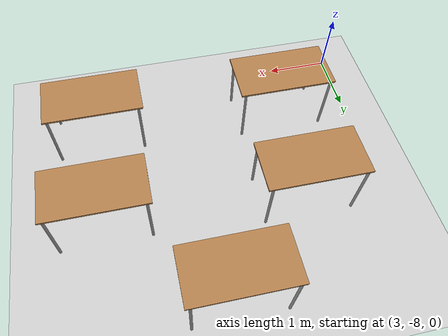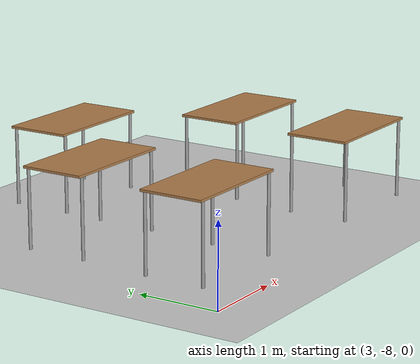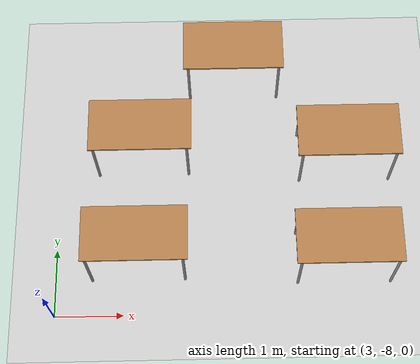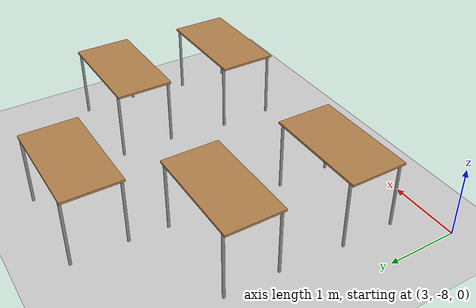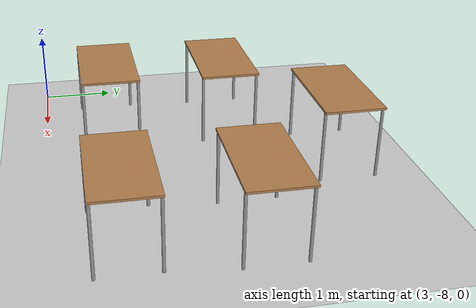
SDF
<sdf version="1.6">
 <world name="default">
  <model name="ground_plane">
   <static>1</static>
   <link name="link">
    <collision name="collision">
     <geometry><plane><normal>0 0 1</normal><size>100 100</size></plane></geometry>
     <surface><friction><ode><mu>100</mu><mu2>50</mu2></ode></friction></surface>
    </collision>
    <visual name="visual">
     <cast_shadows>0</cast_shadows>
     <geometry><plane><normal>0 0 1</normal><size>100 100</size></plane></geometry>
     <material>
      <script><uri>file://media/materials/scripts/gazebo.material</uri><name>Gazebo/Grey</name></script>
     </material>
    </visual>
   </link>
  </model>
  <model name="table_clone_3">
   <static>1</static>
   <link name="link">
    <collision name="surface">
     <pose>0 0 1 0 -0 0</pose>
     <geometry><box><size>1.5 0.8 0.03</size></box></geometry>
     <surface><friction><ode><mu>0.6</mu><mu2>0.6</mu2></ode></friction></surface>
    </collision>
    <visual name="visual1">
     <pose>0 0 1 0 -0 0</pose>
     <geometry><box><size>1.5 0.8 0.03</size></box></geometry>
     <material>
      <script><uri>file://media/materials/scripts/gazebo.material</uri><name>Gazebo/Wood</name></script>
     </material>
    </visual>
    <collision name="front_left_leg">
     <pose>0.68 0.38 0.5 0 -0 0</pose>
     <geometry><cylinder><radius>0.02</radius><length>1</length></cylinder></geometry>
    </collision>
    <visual name="front_left_leg">
     <pose>0.68 0.38 0.5 0 -0 0</pose>
     <geometry><cylinder><radius>0.02</radius><length>1</length></cylinder></geometry>
     <material>
      <script><uri>file://media/materials/scripts/gazebo.material</uri><name>Gazebo/Grey</name></script>
     </material>
    </visual>
    <collision name="front_right_leg">
     <pose>0.68 -0.38 0.5 0 -0 0</pose>
     <geometry><cylinder><radius>0.02</radius><length>1</length></cylinder></geometry>
    </collision>
    <visual name="front_right_leg">
     <pose>0.68 -0.38 0.5 0 -0 0</pose>
     <geometry><cylinder><radius>0.02</radius><length>1</length></cylinder></geometry>
     <material>
      <script><uri>file://media/materials/scripts/gazebo.material</uri><name>Gazebo/Grey</name></script>
     </material>
    </visual>
    <collision name="back_right_leg">
     <pose>-0.68 -0.38 0.5 0 -0 0</pose>
     <geometry><cylinder><radius>0.02</radius><length>1</length></cylinder></geometry>
    </collision>
    <visual name="back_right_leg">
     <pose>-0.68 -0.38 0.5 0 -0 0</pose>
     <geometry><cylinder><radius>0.02</radius><length>1</length></cylinder></geometry>
     <material>
      <script><uri>file://media/materials/scripts/gazebo.material</uri><name>Gazebo/Grey</name></script>
     </material>
    </visual>
    <collision name="back_left_leg">
     <pose>-0.68 0.38 0.5 0 -0 0</pose>
     <geometry><cylinder><radius>0.02</radius><length>1</length></cylinder></geometry>
    </collision>
    <visual name="back_left_leg">
     <pose>-0.68 0.38 0.5 0 -0 0</pose>
     <geometry><cylinder><radius>0.02</radius><length>1</length></cylinder></geometry>
     <material>
      <script><uri>file://media/materials/scripts/gazebo.material</uri><name>Gazebo/Grey</name></script>
     </material>
    </visual>
   </link>
   <pose>5.66427 -4.11783 0 0 -0 0</pose>
  </model>
  <model name="table_clone_4">
   <static>1</static>
   <link name="link">
    <collision name="surface">
     <pose>0 0 1 0 -0 0</pose>
     <geometry><box><size>1.5 0.8 0.03</size></box></geometry>
     <surface><friction><ode><mu>0.6</mu><mu2>0.6</mu2></ode></friction></surface>
    </collision>
    <visual name="visual1">
     <pose>0 0 1 0 -0 0</pose>
     <geometry><box><size>1.5 0.8 0.03</size></box></geometry>
     <material>
      <script><uri>file://media/materials/scripts/gazebo.material</uri><name>Gazebo/Wood</name></script>
     </material>
    </visual>
    <collision name="front_left_leg">
     <pose>0.68 0.38 0.5 0 -0 0</pose>
     <geometry><cylinder><radius>0.02</radius><length>1</length></cylinder></geometry>
    </collision>
    <visual name="front_left_leg">
     <pose>0.68 0.38 0.5 0 -0 0</pose>
     <geometry><cylinder><radius>0.02</radius><length>1</length></cylinder></geometry>
     <material>
      <script><uri>file://media/materials/scripts/gazebo.material</uri><name>Gazebo/Grey</name></script>
     </material>
    </visual>
    <collision name="front_right_leg">
     <pose>0.68 -0.38 0.5 0 -0 0</pose>
     <geometry><cylinder><radius>0.02</radius><length>1</length></cylinder></geometry>
    </collision>
    <visual name="front_right_leg">
     <pose>0.68 -0.38 0.5 0 -0 0</pose>
     <geometry><cylinder><radius>0.02</radius><length>1</length></cylinder></geometry>
     <material>
      <script><uri>file://media/materials/scripts/gazebo.material</uri><name>Gazebo/Grey</name></script>
     </material>
    </visual>
    <collision name="back_right_leg">
     <pose>-0.68 -0.38 0.5 0 -0 0</pose>
     <geometry><cylinder><radius>0.02</radius><length>1</length></cylinder></geometry>
    </collision>
    <visual name="back_right_leg">
     <pose>-0.68 -0.38 0.5 0 -0 0</pose>
     <geometry><cylinder><radius>0.02</radius><length>1</length></cylinder></geometry>
     <material>
      <script><uri>file://media/materials/scripts/gazebo.material</uri><name>Gazebo/Grey</name></script>
     </material>
    </visual>
    <collision name="back_left_leg">
     <pose>-0.68 0.38 0.5 0 -0 0</pose>
     <geometry><cylinder><radius>0.02</radius><length>1</length></cylinder></geometry>
    </collision>
    <visual name="back_left_leg">
     <pose>-0.68 0.38 0.5 0 -0 0</pose>
     <geometry><cylinder><radius>0.02</radius><length>1</length></cylinder></geometry>
     <material>
      <script><uri>file://media/materials/scripts/gazebo.material</uri><name>Gazebo/Grey</name></script>
     </material>
    </visual>
   </link>
   <pose>4.27531 -5.41503 0 0 -0 0</pose>
  </model>
  <model name="table_clone_5">
   <static>1</static>
   <link name="link">
    <collision name="surface">
     <pose>0 0 1 0 -0 0</pose>
     <geometry><box><size>1.5 0.8 0.03</size></box></geometry>
     <surface><friction><ode><mu>0.6</mu><mu2>0.6</mu2></ode></friction></surface>
    </collision>
    <visual name="visual1">
     <pose>0 0 1 0 -0 0</pose>
     <geometry><box><size>1.5 0.8 0.03</size></box></geometry>
     <material>
      <script><uri>file://media/materials/scripts/gazebo.material</uri><name>Gazebo/Wood</name></script>
     </material>
    </visual>
    <collision name="front_left_leg">
     <pose>0.68 0.38 0.5 0 -0 0</pose>
     <geometry><cylinder><radius>0.02</radius><length>1</length></cylinder></geometry>
    </collision>
    <visual name="front_left_leg">
     <pose>0.68 0.38 0.5 0 -0 0</pose>
     <geometry><cylinder><radius>0.02</radius><length>1</length></cylinder></geometry>
     <material>
      <script><uri>file://media/materials/scripts/gazebo.material</uri><name>Gazebo/Grey</name></script>
     </material>
    </visual>
    <collision name="front_right_leg">
     <pose>0.68 -0.38 0.5 0 -0 0</pose>
     <geometry><cylinder><radius>0.02</radius><length>1</length></cylinder></geometry>
    </collision>
    <visual name="front_right_leg">
     <pose>0.68 -0.38 0.5 0 -0 0</pose>
     <geometry><cylinder><radius>0.02</radius><length>1</length></cylinder></geometry>
     <material>
      <script><uri>file://media/materials/scripts/gazebo.material</uri><name>Gazebo/Grey</name></script>
     </material>
    </visual>
    <collision name="back_right_leg">
     <pose>-0.68 -0.38 0.5 0 -0 0</pose>
     <geometry><cylinder><radius>0.02</radius><length>1</length></cylinder></geometry>
    </collision>
    <visual name="back_right_leg">
     <pose>-0.68 -0.38 0.5 0 -0 0</pose>
     <geometry><cylinder><radius>0.02</radius><length>1</length></cylinder></geometry>
     <material>
      <script><uri>file://media/materials/scripts/gazebo.material</uri><name>Gazebo/Grey</name></script>
     </material>
    </visual>
    <collision name="back_left_leg">
     <pose>-0.68 0.38 0.5 0 -0 0</pose>
     <geometry><cylinder><radius>0.02</radius><length>1</length></cylinder></geometry>
    </collision>
    <visual name="back_left_leg">
     <pose>-0.68 0.38 0.5 0 -0 0</pose>
     <geometry><cylinder><radius>0.02</radius><length>1</length></cylinder></geometry>
     <material>
      <script><uri>file://media/materials/scripts/gazebo.material</uri><name>Gazebo/Grey</name></script>
     </material>
    </visual>
   </link>
   <pose>7.3197 -5.55654 0 0 -0 0</pose>
  </model>
  <model name="table_clone_6">
   <static>1</static>
   <link name="link">
    <collision name="surface">
     <pose>0 0 1 0 -0 0</pose>
     <geometry><box><size>1.5 0.8 0.03</size></box></geometry>
     <surface><friction><ode><mu>0.6</mu><mu2>0.6</mu2></ode></friction></surface>
    </collision>
    <visual name="visual1">
     <pose>0 0 1 0 -0 0</pose>
     <geometry><box><size>1.5 0.8 0.03</size></box></geometry>
     <material>
      <script><uri>file://media/materials/scripts/gazebo.material</uri><name>Gazebo/Wood</name></script>
     </material>
    </visual>
    <collision name="front_left_leg">
     <pose>0.68 0.38 0.5 0 -0 0</pose>
     <geometry><cylinder><radius>0.02</radius><length>1</length></cylinder></geometry>
    </collision>
    <visual name="front_left_leg">
     <pose>0.68 0.38 0.5 0 -0 0</pose>
     <geometry><cylinder><radius>0.02</radius><length>1</length></cylinder></geometry>
     <material>
      <script><uri>file://media/materials/scripts/gazebo.material</uri><name>Gazebo/Grey</name></script>
     </material>
    </visual>
    <collision name="front_right_leg">
     <pose>0.68 -0.38 0.5 0 -0 0</pose>
     <geometry><cylinder><radius>0.02</radius><length>1</length></cylinder></geometry>
    </collision>
    <visual name="front_right_leg">
     <pose>0.68 -0.38 0.5 0 -0 0</pose>
     <geometry><cylinder><radius>0.02</radius><length>1</length></cylinder></geometry>
     <material>
      <script><uri>file://media/materials/scripts/gazebo.material</uri><name>Gazebo/Grey</name></script>
     </material>
    </visual>
    <collision name="back_right_leg">
     <pose>-0.68 -0.38 0.5 0 -0 0</pose>
     <geometry><cylinder><radius>0.02</radius><length>1</length></cylinder></geometry>
    </collision>
    <visual name="back_right_leg">
     <pose>-0.68 -0.38 0.5 0 -0 0</pose>
     <geometry><cylinder><radius>0.02</radius><length>1</length></cylinder></geometry>
     <material>
      <script><uri>file://media/materials/scripts/gazebo.material</uri><name>Gazebo/Grey</name></script>
     </material>
    </visual>
    <collision name="back_left_leg">
     <pose>-0.68 0.38 0.5 0 -0 0</pose>
     <geometry><cylinder><radius>0.02</radius><length>1</length></cylinder></geometry>
    </collision>
    <visual name="back_left_leg">
     <pose>-0.68 0.38 0.5 0 -0 0</pose>
     <geometry><cylinder><radius>0.02</radius><length>1</length></cylinder></geometry>
     <material>
      <script><uri>file://media/materials/scripts/gazebo.material</uri><name>Gazebo/Grey</name></script>
     </material>
    </visual>
   </link>
   <pose>4.21587 -7.08085 0 0 -0 0</pose>
  </model>
  <model name="table_clone_7">
   <static>1</static>
   <link name="link">
    <collision name="surface">
     <pose>0 0 1 0 -0 0</pose>
     <geometry><box><size>1.5 0.8 0.03</size></box></geometry>
     <surface><friction><ode><mu>0.6</mu><mu2>0.6</mu2></ode></friction></surface>
    </collision>
    <visual name="visual1">
     <pose>0 0 1 0 -0 0</pose>
     <geometry><box><size>1.5 0.8 0.03</size></box></geometry>
     <material>
      <script><uri>file://media/materials/scripts/gazebo.material</uri><name>Gazebo/Wood</name></script>
     </material>
    </visual>
    <collision name="front_left_leg">
     <pose>0.68 0.38 0.5 0 -0 0</pose>
     <geometry><cylinder><radius>0.02</radius><length>1</length></cylinder></geometry>
    </collision>
    <visual name="front_left_leg">
     <pose>0.68 0.38 0.5 0 -0 0</pose>
     <geometry><cylinder><radius>0.02</radius><length>1</length></cylinder></geometry>
     <material>
      <script><uri>file://media/materials/scripts/gazebo.material</uri><name>Gazebo/Grey</name></script>
     </material>
    </visual>
    <collision name="front_right_leg">
     <pose>0.68 -0.38 0.5 0 -0 0</pose>
     <geometry><cylinder><radius>0.02</radius><length>1</length></cylinder></geometry>
    </collision>
    <visual name="front_right_leg">
     <pose>0.68 -0.38 0.5 0 -0 0</pose>
     <geometry><cylinder><radius>0.02</radius><length>1</length></cylinder></geometry>
     <material>
      <script><uri>file://media/materials/scripts/gazebo.material</uri><name>Gazebo/Grey</name></script>
     </material>
    </visual>
    <collision name="back_right_leg">
     <pose>-0.68 -0.38 0.5 0 -0 0</pose>
     <geometry><cylinder><radius>0.02</radius><length>1</length></cylinder></geometry>
    </collision>
    <visual name="back_right_leg">
     <pose>-0.68 -0.38 0.5 0 -0 0</pose>
     <geometry><cylinder><radius>0.02</radius><length>1</length></cylinder></geometry>
     <material>
      <script><uri>file://media/materials/scripts/gazebo.material</uri><name>Gazebo/Grey</name></script>
     </material>
    </visual>
    <collision name="back_left_leg">
     <pose>-0.68 0.38 0.5 0 -0 0</pose>
     <geometry><cylinder><radius>0.02</radius><length>1</length></cylinder></geometry>
    </collision>
    <visual name="back_left_leg">
     <pose>-0.68 0.38 0.5 0 -0 0</pose>
     <geometry><cylinder><radius>0.02</radius><length>1</length></cylinder></geometry>
     <material>
      <script><uri>file://media/materials/scripts/gazebo.material</uri><name>Gazebo/Grey</name></script>
     </material>
    </visual>
   </link>
   <pose>7.22238 -7.17164 0 0 -0 0</pose>
  </model>
 </world>
</sdf>
